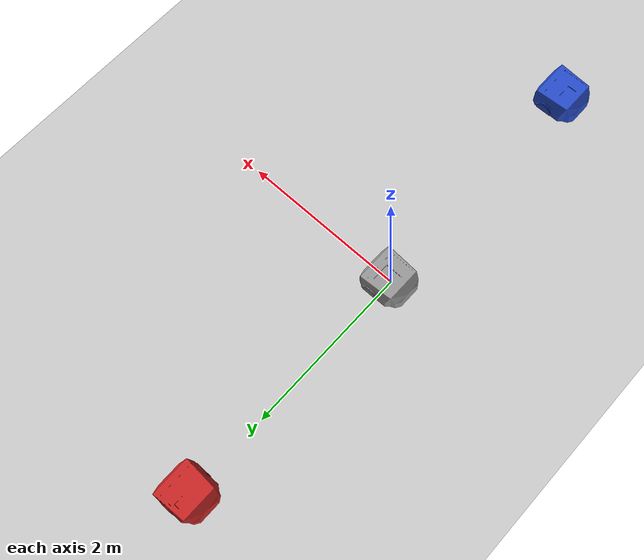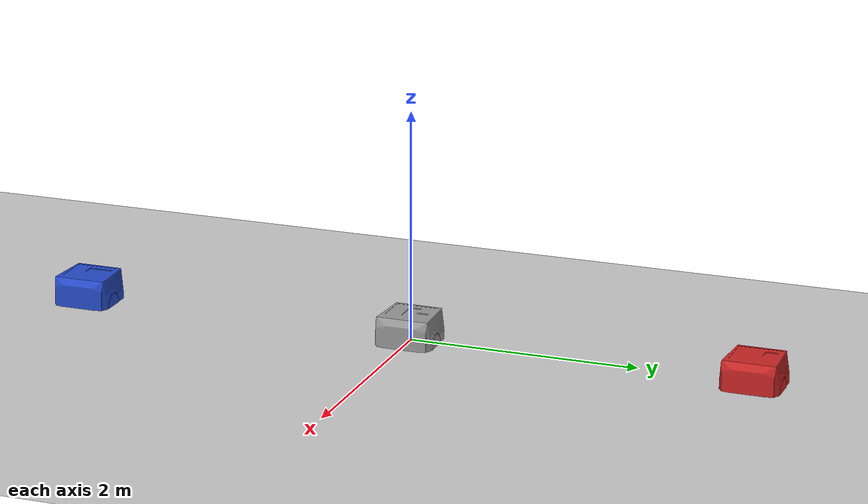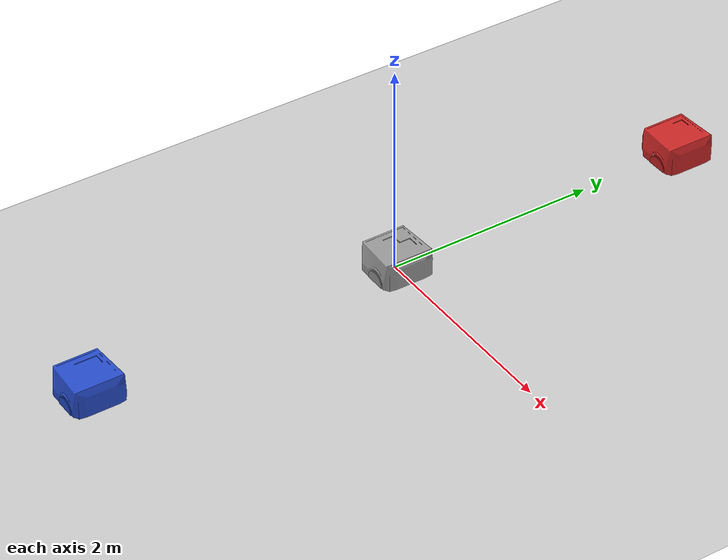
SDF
<sdf version='1.7'>
  <world name='default'>
    <light name='sun' type='directional'>
      <cast_shadows>1</cast_shadows>
      <pose>0 0 10 0 -0 0</pose>
      <diffuse>0.8 0.8 0.8 1</diffuse>
      <specular>0.2 0.2 0.2 1</specular>
      <attenuation>
        <range>1000</range>
        <constant>0.9</constant>
        <linear>0.01</linear>
        <quadratic>0.001</quadratic>
      </attenuation>
      <direction>-0.5 0.1 -0.9</direction>
      <spot>
        <inner_angle>0</inner_angle>
        <outer_angle>0</outer_angle>
        <falloff>0</falloff>
      </spot>
    </light>

    <model name='ground_plane'>
      <static>1</static>
      <link name='link'>
        <collision name='collision'>
          <geometry>
            <plane>
              <normal>0 0 1</normal>
              <size>100 100</size>
            </plane>
          </geometry>
          <surface>
            <contact>
              <collide_bitmask>65535</collide_bitmask>
            </contact>
            <friction>
              <ode>
                <mu>100</mu>
                <mu2>50</mu2>
              </ode>
              <torsional>
                <ode/>
              </torsional>
            </friction>
            <bounce/>
          </surface>
          <max_contacts>10</max_contacts>
        </collision>
        <visual name='visual'>
          <cast_shadows>0</cast_shadows>
          <geometry>
            <plane>
              <normal>0 0 1</normal>
              <size>100 100</size>
            </plane>
          </geometry>
          <material>
            <script>
              <uri>file://media/materials/scripts/gazebo.material</uri>
              <name>Gazebo/Grey</name>
            </script>
          </material>
        </visual>
        <self_collide>0</self_collide>
        <enable_wind>0</enable_wind>
        <kinematic>0</kinematic>
      </link>
    </model>

    <model name='Robot0'>
      <pose>0 0 0 0 0 0</pose>
      <link name='Chassis0'>
        <pose>0 0 0.1 1.5708 0 1.5708</pose>
        <inertial>
          <mass>4.0</mass>
        </inertial>
        <collision name='collision'>
          <geometry>
            <box>
              <size>0.65 0.3 0.2</size>
            </box>
          </geometry>
          <surface>
            <contact>
              <collide_bitmask>65535</collide_bitmask>
            </contact>
          </surface>
        </collision>
        <visual name='visual'>
          <pose>0 -0.15 0 0 0 0</pose>
          <geometry>
            <mesh>
              <uri>./Robot0.stl</uri>
              <scale>3 3 3</scale>
            </mesh>
          </geometry>
          <material>
            <script>
              <uri>file://media/materials/scripts/gazebo.material</uri>
              <name>Gazebo/Grey</name>
            </script>
          </material>
        </visual>
      </link>
      <link name='Left_Wheel_0'>
        <pose>0.08 0.23 0 1.5708 0 0</pose>
        <inertial>
          <mass>4.0</mass>
        </inertial>
        <collision name='collision'>
          <geometry>
            <cylinder>
              <radius>0.1</radius>
              <length>0.05</length>
            </cylinder>
          </geometry>
          <surface>
            <contact>
              <collide_bitmask>65535</collide_bitmask>
            </contact>
          </surface>
        </collision>
        <visual name='visual'>
          <geometry>
            <cylinder>
              <radius>0.1</radius>
              <length>0.05</length>
            </cylinder>
          </geometry>
          <material>
            <script>
              <uri>file://media/materials/scripts/gazebo.material</uri>
              <name>Gazebo/Grey</name>
            </script>
          </material>
        </visual>
      </link>
      <link name='Right_Wheel_0'>
        <pose>0.08 -0.23 0 1.5708 0 0</pose>
        <inertial>
          <mass>4.0</mass>
        </inertial>
        <collision name='collision'>
          <geometry>
            <cylinder>
              <radius>0.1</radius>
              <length>0.05</length>
            </cylinder>
          </geometry>
          <surface>
            <contact>
              <collide_bitmask>65535</collide_bitmask>
            </contact>
          </surface>
        </collision>
        <visual name='visual'>
          <geometry>
            <cylinder>
              <radius>0.1</radius>
              <length>0.05</length>
            </cylinder>
          </geometry>
          <material>
            <script>
              <uri>file://media/materials/scripts/gazebo.material</uri>
              <name>Gazebo/Grey</name>
            </script>
          </material>
        </visual>
      </link>
      <link name='Caster_Wheel_0'>
        <pose>-0.15 0 -0.04 0 0 0</pose>
        <inertial>
          <mass>4.0</mass>
        </inertial>
        <collision name='collision'>
          <geometry>
            <sphere>
              <radius>0.06</radius>
            </sphere>
          </geometry>
          <surface>
            <contact>
              <collide_bitmask>65535</collide_bitmask>
            </contact>
          </surface>
        </collision>
        <visual name='visual'>
          <geometry>
            <sphere>
              <radius>0.06</radius>
            </sphere>
          </geometry>
          <material>
            <script>
              <uri>file://media/materials/scripts/gazebo.material</uri>
              <name>Gazebo/Grey</name>
            </script>
          </material>
        </visual>
      </link>
      <joint name='Left_Wheel_0_joint' type='revolute'>
        <parent>Chassis0</parent>
        <child>Left_Wheel_0</child>
        <axis>
          <xyz>0 0 1</xyz>
          <limit>
            <lower>-1.79769e+308</lower>
            <upper>1.79769e+308</upper>
          </limit>
        </axis>
      </joint>
      <joint name='Right_Wheel_0_joint' type='revolute'>
        <parent>Chassis0</parent>
        <child>Right_Wheel_0</child>
        <axis>
          <xyz>0 0 1</xyz>
          <limit>
            <lower>-1.79769e+308</lower>
            <upper>1.79769e+308</upper>
          </limit>
        </axis>
      </joint>
      <joint name='Caster_Wheel_0_joint' type='ball'>
        <parent>Chassis0</parent>
        <child>Caster_Wheel_0</child>
      </joint>
      <plugin filename="libgazebo_ros_diff_drive.so" name="gazebo_ros_diff_drive_Robot0">
        <ros>
          <namespace>/</namespace>
          <remapping>cmd_vel:=/cmd_vel_Robot0</remapping>
        </ros>
        <left_joint>Left_Wheel_0_joint</left_joint>
        <right_joint>Right_Wheel_0_joint</right_joint>
        <wheel_separation>0.4</wheel_separation>
        <wheel_diameter>0.1</wheel_diameter>
        <torque>5.0</torque>
      </plugin>
      <plugin name="gazebo_ros_p0d" filename="libgazebo_ros_p3d.so">
        <ros>
          <namespace>/</namespace>
          <remapping>odom:=/odom_Robot0</remapping>
        </ros>
        <body_name>Chassis0</body_name>
        <frame_name>world</frame_name>
        <update_rate>10.0</update_rate>
        <gaussian_noise>0.01</gaussian_noise>
      </plugin>
    </model>

    <model name='Robot1'>
      <pose>0 3 0 0 0 0</pose>
      <link name='Chassis1'>
        <pose>0 0 0.1 1.5708 0 1.5708</pose>
        <inertial>
          <mass>4.0</mass>
        </inertial>
        <collision name='collision'>
          <geometry>
            <box>
              <size>0.65 0.3 0.2</size>
            </box>
          </geometry>
          <surface>
            <contact>
              <collide_bitmask>65535</collide_bitmask>
            </contact>
          </surface>
        </collision>
        <visual name='visual'>
          <pose>0 -0.15 0 0 0 0</pose>
          <geometry>
            <mesh>
              <uri>./Robot1.stl</uri>
              <scale>3 3 3</scale>
            </mesh>
          </geometry>
          <material>
            <script>
              <uri>file://media/materials/scripts/gazebo.material</uri>
              <name>Gazebo/Red</name>
            </script>
          </material>
        </visual>
      </link>
      <link name='Left_Wheel_1'>
        <pose>0.08 0.23 0 1.5708 0 0</pose>
        <inertial>
          <mass>4.0</mass>
        </inertial>
        <collision name='collision'>
          <geometry>
            <cylinder>
              <radius>0.1</radius>
              <length>0.05</length>
            </cylinder>
          </geometry>
          <surface>
            <contact>
              <collide_bitmask>65535</collide_bitmask>
            </contact>
          </surface>
        </collision>
        <visual name='visual'>
          <geometry>
            <cylinder>
              <radius>0.1</radius>
              <length>0.05</length>
            </cylinder>
          </geometry>
          <material>
            <script>
              <uri>file://media/materials/scripts/gazebo.material</uri>
              <name>Gazebo/Red</name>
            </script>
          </material>
        </visual>
      </link>
      <link name='Right_Wheel_1'>
        <pose>0.08 -0.23 0 1.5708 0 0</pose>
        <inertial>
          <mass>4.0</mass>
        </inertial>
        <collision name='collision'>
          <geometry>
            <cylinder>
              <radius>0.1</radius>
              <length>0.05</length>
            </cylinder>
          </geometry>
          <surface>
            <contact>
              <collide_bitmask>65535</collide_bitmask>
            </contact>
          </surface>
        </collision>
        <visual name='visual'>
          <geometry>
            <cylinder>
              <radius>0.1</radius>
              <length>0.05</length>
            </cylinder>
          </geometry>
          <material>
            <script>
              <uri>file://media/materials/scripts/gazebo.material</uri>
              <name>Gazebo/Red</name>
            </script>
          </material>
        </visual>
      </link>
      <link name='Caster_Wheel_1'>
        <pose>-0.15 0 -0.04 0 0 0</pose>
        <inertial>
          <mass>4.0</mass>
        </inertial>
        <collision name='collision'>
          <geometry>
            <sphere>
              <radius>0.06</radius>
            </sphere>
          </geometry>
          <surface>
            <contact>
              <collide_bitmask>65535</collide_bitmask>
            </contact>
          </surface>
        </collision>
        <visual name='visual'>
          <geometry>
            <sphere>
              <radius>0.06</radius>
            </sphere>
          </geometry>
          <material>
            <script>
              <uri>file://media/materials/scripts/gazebo.material</uri>
              <name>Gazebo/Red</name>
            </script>
          </material>
        </visual>
      </link>
      <joint name='Left_Wheel_1_joint' type='revolute'>
        <parent>Chassis1</parent>
        <child>Left_Wheel_1</child>
        <axis>
          <xyz>0 0 1</xyz>
          <limit>
            <lower>-1.79769e+308</lower>
            <upper>1.79769e+308</upper>
          </limit>
        </axis>
      </joint>
      <joint name='Right_Wheel_1_joint' type='revolute'>
        <parent>Chassis1</parent>
        <child>Right_Wheel_1</child>
        <axis>
          <xyz>0 0 1</xyz>
          <limit>
            <lower>-1.79769e+308</lower>
            <upper>1.79769e+308</upper>
          </limit>
        </axis>
      </joint>
      <joint name='Caster_Wheel_1_joint' type='ball'>
        <parent>Chassis1</parent>
        <child>Caster_Wheel_1</child>
      </joint>
      <plugin filename="libgazebo_ros_diff_drive.so" name="gazebo_ros_diff_drive_Robot1">
        <ros>
          <namespace>/</namespace>
          <remapping>cmd_vel:=/cmd_vel_Robot1</remapping>
        </ros>
        <left_joint>Left_Wheel_1_joint</left_joint>
        <right_joint>Right_Wheel_1_joint</right_joint>
        <wheel_separation>0.4</wheel_separation>
        <wheel_diameter>0.1</wheel_diameter>
        <torque>5.0</torque>
      </plugin>
      <plugin name="gazebo_ros_p1d" filename="libgazebo_ros_p3d.so">
        <ros>
          <namespace>/</namespace>
          <remapping>odom:=/odom_Robot1</remapping>
        </ros>
        <body_name>Chassis1</body_name>
        <frame_name>world</frame_name>
        <update_rate>10.0</update_rate>
        <gaussian_noise>0.01</gaussian_noise>
      </plugin>
    </model>

    <model name='Robot2'>
      <pose>0 -3 0 0 0 0</pose>
      <link name='Chassis2'>
        <pose>0 0 0.1 1.5708 0 1.5708</pose>
        <inertial>
          <mass>4.0</mass>
        </inertial>
        <collision name='collision'>
          <geometry>
            <box>
              <size>0.65 0.3 0.2</size>
            </box>
          </geometry>
          <surface>
            <contact>
              <collide_bitmask>65535</collide_bitmask>
            </contact>
          </surface>
        </collision>
        <visual name='visual'>
          <pose>0 -0.15 0 0 0 0</pose>
          <geometry>
            <mesh>
              <uri>./Robot2.stl</uri>
              <scale>3 3 3</scale>
            </mesh>
          </geometry>
          <material>
            <script>
              <uri>file://media/materials/scripts/gazebo.material</uri>
              <name>Gazebo/Blue</name>
            </script>
          </material>
        </visual>
      </link>
      <link name='Left_Wheel_2'>
        <pose>0.08 0.23 0 1.5708 0 0</pose>
        <inertial>
          <mass>4.0</mass>
        </inertial>
        <collision name='collision'>
          <geometry>
            <cylinder>
              <radius>0.1</radius>
              <length>0.05</length>
            </cylinder>
          </geometry>
          <surface>
            <contact>
              <collide_bitmask>65535</collide_bitmask>
            </contact>
          </surface>
        </collision>
        <visual name='visual'>
          <geometry>
            <cylinder>
              <radius>0.1</radius>
              <length>0.05</length>
            </cylinder>
          </geometry>
          <material>
            <script>
              <uri>file://media/materials/scripts/gazebo.material</uri>
              <name>Gazebo/Blue</name>
            </script>
          </material>
        </visual>
      </link>
      <link name='Right_Wheel_2'>
        <pose>0.08 -0.23 0 1.5708 0 0</pose>
        <inertial>
          <mass>4.0</mass>
        </inertial>
        <collision name='collision'>
          <geometry>
            <cylinder>
              <radius>0.1</radius>
              <length>0.05</length>
            </cylinder>
          </geometry>
          <surface>
            <contact>
              <collide_bitmask>65535</collide_bitmask>
            </contact>
          </surface>
        </collision>
        <visual name='visual'>
          <geometry>
            <cylinder>
              <radius>0.1</radius>
              <length>0.05</length>
            </cylinder>
          </geometry>
          <material>
            <script>
              <uri>file://media/materials/scripts/gazebo.material</uri>
              <name>Gazebo/Blue</name>
            </script>
          </material>
        </visual>
      </link>
      <link name='Caster_Wheel_2'>
        <pose>-0.15 0 -0.04 0 0 0</pose>
        <inertial>
          <mass>4.0</mass>
        </inertial>
        <collision name='collision'>
          <geometry>
            <sphere>
              <radius>0.06</radius>
            </sphere>
          </geometry>
          <surface>
            <contact>
              <collide_bitmask>65535</collide_bitmask>
            </contact>
          </surface>
        </collision>
        <visual name='visual'>
          <geometry>
            <sphere>
              <radius>0.06</radius>
            </sphere>
          </geometry>
          <material>
            <script>
              <uri>file://media/materials/scripts/gazebo.material</uri>
              <name>Gazebo/Blue</name>
            </script>
          </material>
        </visual>
      </link>
      <joint name='Left_Wheel_2_joint' type='revolute'>
        <parent>Chassis2</parent>
        <child>Left_Wheel_2</child>
        <axis>
          <xyz>0 0 1</xyz>
          <limit>
            <lower>-1.79769e+308</lower>
            <upper>1.79769e+308</upper>
          </limit>
        </axis>
      </joint>
      <joint name='Right_Wheel_2_joint' type='revolute'>
        <parent>Chassis2</parent>
        <child>Right_Wheel_2</child>
        <axis>
          <xyz>0 0 1</xyz>
          <limit>
            <lower>-1.79769e+308</lower>
            <upper>1.79769e+308</upper>
          </limit>
        </axis>
      </joint>
      <joint name='Caster_Wheel_2_joint' type='ball'>
        <parent>Chassis2</parent>
        <child>Caster_Wheel_2</child>
      </joint>
      <plugin filename="libgazebo_ros_diff_drive.so" name="gazebo_ros_diff_drive_Robot2">
        <ros>
          <namespace>/</namespace>
          <remapping>cmd_vel:=/cmd_vel_Robot2</remapping>
        </ros>
        <left_joint>Left_Wheel_2_joint</left_joint>
        <right_joint>Right_Wheel_2_joint</right_joint>
        <wheel_separation>0.4</wheel_separation>
        <wheel_diameter>0.1</wheel_diameter>
        <torque>5.0</torque>
      </plugin>
      <plugin name="gazebo_ros_p2d" filename="libgazebo_ros_p3d.so">
        <ros>
          <namespace>/</namespace>
          <remapping>odom:=/odom_Robot2</remapping>
        </ros>
        <body_name>Chassis2</body_name>
        <frame_name>world</frame_name>
        <update_rate>10.0</update_rate>
        <gaussian_noise>0.01</gaussian_noise>
      </plugin>
    </model>

  </world>
</sdf>
